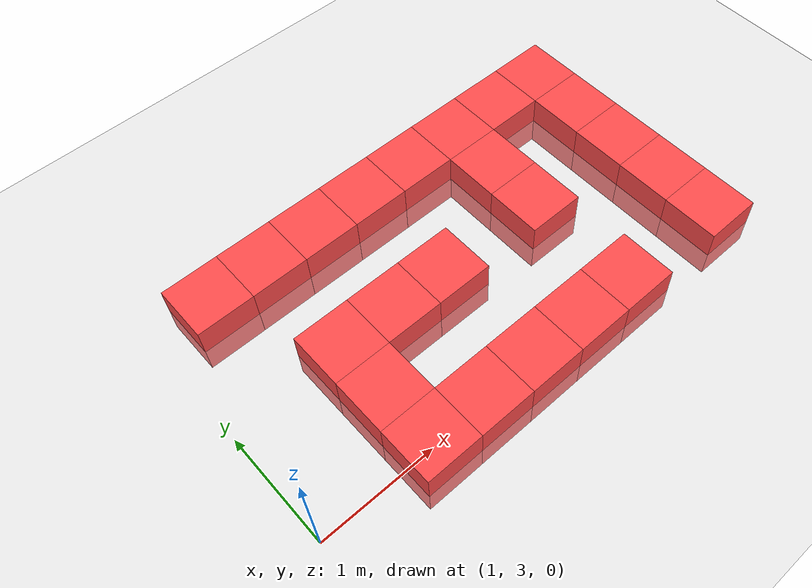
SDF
<sdf version="1.6">
 <world name="default">
  <model name="ground_plane">
   <static>1</static>
   <link name="link">
    <collision name="collision">
     <geometry><plane><normal>0 0 1</normal><size>100 100</size></plane></geometry>
     <surface><friction><ode><mu>100</mu><mu2>50</mu2></ode></friction></surface>
    </collision>
    <visual name="visual">
     <cast_shadows>0</cast_shadows>
     <geometry><plane><normal>0 0 1</normal><size>100 100</size></plane></geometry>
     <material>
      <script><uri>file://media/materials/scripts/gazebo.material</uri><name>Gazebo/Grey</name></script>
     </material>
    </visual>
   </link>
  </model>
  <model name="Box_Red_43">
   <link name="link_0">
    <inertial>
     <mass>1</mass>
     <inertia>
      <ixx>0.166667</ixx>
      <ixy>0</ixy>
      <ixz>0</ixz>
      <iyy>0.166667</iyy>
      <iyz>0</iyz>
      <izz>0.166667</izz>
     </inertia>
    </inertial>
    <visual name="visual">
     <geometry><box><size>0.5 0.5 0.5</size></box></geometry>
     <material>
      <lighting>1</lighting>
      <script><uri>file://media/materials/scripts/gazebo.material</uri><name>Gazebo/Grey</name></script>
      <ambient>1 0.3 0.3 1</ambient>
      <diffuse>0.7 0.7 0.7 1</diffuse>
      <specular>0.01 0.01 0.01 1</specular>
      <emissive>0 0 0 1</emissive>
      <shader type="vertex"><normal_map>__default__</normal_map></shader>
     </material>
    </visual>
    <collision name="collision">
     <geometry><box><size>0.5 0.5 0.5</size></box></geometry>
     <surface>
      <friction>
       <ode><mu>1</mu><mu2>1</mu2><fdir1>0 0 0</fdir1><slip1>0</slip1><slip2>0</slip2></ode>
       <torsional>
        <coefficient>1</coefficient>
        <patch_radius>0</patch_radius>
        <surface_radius>0</surface_radius>
        <use_patch_radius>1</use_patch_radius>
        <ode><slip>0</slip></ode>
       </torsional>
      </friction>
      <bounce><restitution_coefficient>0</restitution_coefficient><threshold>1e+06</threshold></bounce>
      <contact>
       <collide_without_contact>0</collide_without_contact>
       <collide_without_contact_bitmask>1</collide_without_contact_bitmask>
       <collide_bitmask>1</collide_bitmask>
       <ode>
        <soft_cfm>0</soft_cfm>
        <soft_erp>0.2</soft_erp>
        <kp>1e+13</kp>
        <kd>1</kd>
        <max_vel>0.01</max_vel>
        <min_depth>0</min_depth>
       </ode>
       <bullet>
        <split_impulse>1</split_impulse>
        <split_impulse_penetration_threshold>-0.01</split_impulse_penetration_threshold>
        <soft_cfm>0</soft_cfm>
        <soft_erp>0.2</soft_erp>
        <kp>1e+13</kp>
        <kd>1</kd>
       </bullet>
      </contact>
     </surface>
    </collision>
   </link>
   <static>0</static>
   <pose>1.500 5.000 0.000 0 0 0</pose>
  </model>
  <model name="Box_Red_50">
   <link name="link_0">
    <inertial>
     <mass>1</mass>
     <inertia>
      <ixx>0.166667</ixx>
      <ixy>0</ixy>
      <ixz>0</ixz>
      <iyy>0.166667</iyy>
      <iyz>0</iyz>
      <izz>0.166667</izz>
     </inertia>
    </inertial>
    <visual name="visual">
     <geometry><box><size>0.5 0.5 0.5</size></box></geometry>
     <material>
      <lighting>1</lighting>
      <script><uri>file://media/materials/scripts/gazebo.material</uri><name>Gazebo/Grey</name></script>
      <ambient>1 0.3 0.3 1</ambient>
      <diffuse>0.7 0.7 0.7 1</diffuse>
      <specular>0.01 0.01 0.01 1</specular>
      <emissive>0 0 0 1</emissive>
      <shader type="vertex"><normal_map>__default__</normal_map></shader>
     </material>
    </visual>
    <collision name="collision">
     <geometry><box><size>0.5 0.5 0.5</size></box></geometry>
     <surface>
      <friction>
       <ode><mu>1</mu><mu2>1</mu2><fdir1>0 0 0</fdir1><slip1>0</slip1><slip2>0</slip2></ode>
       <torsional>
        <coefficient>1</coefficient>
        <patch_radius>0</patch_radius>
        <surface_radius>0</surface_radius>
        <use_patch_radius>1</use_patch_radius>
        <ode><slip>0</slip></ode>
       </torsional>
      </friction>
      <bounce><restitution_coefficient>0</restitution_coefficient><threshold>1e+06</threshold></bounce>
      <contact>
       <collide_without_contact>0</collide_without_contact>
       <collide_without_contact_bitmask>1</collide_without_contact_bitmask>
       <collide_bitmask>1</collide_bitmask>
       <ode>
        <soft_cfm>0</soft_cfm>
        <soft_erp>0.2</soft_erp>
        <kp>1e+13</kp>
        <kd>1</kd>
        <max_vel>0.01</max_vel>
        <min_depth>0</min_depth>
       </ode>
       <bullet>
        <split_impulse>1</split_impulse>
        <split_impulse_penetration_threshold>-0.01</split_impulse_penetration_threshold>
        <soft_cfm>0</soft_cfm>
        <soft_erp>0.2</soft_erp>
        <kp>1e+13</kp>
        <kd>1</kd>
       </bullet>
      </contact>
     </surface>
    </collision>
   </link>
   <static>0</static>
   <pose>2.000 3.000 0.000 0 0 0</pose>
  </model>
  <model name="Box_Red_51">
   <link name="link_0">
    <inertial>
     <mass>1</mass>
     <inertia>
      <ixx>0.166667</ixx>
      <ixy>0</ixy>
      <ixz>0</ixz>
      <iyy>0.166667</iyy>
      <iyz>0</iyz>
      <izz>0.166667</izz>
     </inertia>
    </inertial>
    <visual name="visual">
     <geometry><box><size>0.5 0.5 0.5</size></box></geometry>
     <material>
      <lighting>1</lighting>
      <script><uri>file://media/materials/scripts/gazebo.material</uri><name>Gazebo/Grey</name></script>
      <ambient>1 0.3 0.3 1</ambient>
      <diffuse>0.7 0.7 0.7 1</diffuse>
      <specular>0.01 0.01 0.01 1</specular>
      <emissive>0 0 0 1</emissive>
      <shader type="vertex"><normal_map>__default__</normal_map></shader>
     </material>
    </visual>
    <collision name="collision">
     <geometry><box><size>0.5 0.5 0.5</size></box></geometry>
     <surface>
      <friction>
       <ode><mu>1</mu><mu2>1</mu2><fdir1>0 0 0</fdir1><slip1>0</slip1><slip2>0</slip2></ode>
       <torsional>
        <coefficient>1</coefficient>
        <patch_radius>0</patch_radius>
        <surface_radius>0</surface_radius>
        <use_patch_radius>1</use_patch_radius>
        <ode><slip>0</slip></ode>
       </torsional>
      </friction>
      <bounce><restitution_coefficient>0</restitution_coefficient><threshold>1e+06</threshold></bounce>
      <contact>
       <collide_without_contact>0</collide_without_contact>
       <collide_without_contact_bitmask>1</collide_without_contact_bitmask>
       <collide_bitmask>1</collide_bitmask>
       <ode>
        <soft_cfm>0</soft_cfm>
        <soft_erp>0.2</soft_erp>
        <kp>1e+13</kp>
        <kd>1</kd>
        <max_vel>0.01</max_vel>
        <min_depth>0</min_depth>
       </ode>
       <bullet>
        <split_impulse>1</split_impulse>
        <split_impulse_penetration_threshold>-0.01</split_impulse_penetration_threshold>
        <soft_cfm>0</soft_cfm>
        <soft_erp>0.2</soft_erp>
        <kp>1e+13</kp>
        <kd>1</kd>
       </bullet>
      </contact>
     </surface>
    </collision>
   </link>
   <static>0</static>
   <pose>2.000 3.500 0.000 0 0 0</pose>
  </model>
  <model name="Box_Red_52">
   <link name="link_0">
    <inertial>
     <mass>1</mass>
     <inertia>
      <ixx>0.166667</ixx>
      <ixy>0</ixy>
      <ixz>0</ixz>
      <iyy>0.166667</iyy>
      <iyz>0</iyz>
      <izz>0.166667</izz>
     </inertia>
    </inertial>
    <visual name="visual">
     <geometry><box><size>0.5 0.5 0.5</size></box></geometry>
     <material>
      <lighting>1</lighting>
      <script><uri>file://media/materials/scripts/gazebo.material</uri><name>Gazebo/Grey</name></script>
      <ambient>1 0.3 0.3 1</ambient>
      <diffuse>0.7 0.7 0.7 1</diffuse>
      <specular>0.01 0.01 0.01 1</specular>
      <emissive>0 0 0 1</emissive>
      <shader type="vertex"><normal_map>__default__</normal_map></shader>
     </material>
    </visual>
    <collision name="collision">
     <geometry><box><size>0.5 0.5 0.5</size></box></geometry>
     <surface>
      <friction>
       <ode><mu>1</mu><mu2>1</mu2><fdir1>0 0 0</fdir1><slip1>0</slip1><slip2>0</slip2></ode>
       <torsional>
        <coefficient>1</coefficient>
        <patch_radius>0</patch_radius>
        <surface_radius>0</surface_radius>
        <use_patch_radius>1</use_patch_radius>
        <ode><slip>0</slip></ode>
       </torsional>
      </friction>
      <bounce><restitution_coefficient>0</restitution_coefficient><threshold>1e+06</threshold></bounce>
      <contact>
       <collide_without_contact>0</collide_without_contact>
       <collide_without_contact_bitmask>1</collide_without_contact_bitmask>
       <collide_bitmask>1</collide_bitmask>
       <ode>
        <soft_cfm>0</soft_cfm>
        <soft_erp>0.2</soft_erp>
        <kp>1e+13</kp>
        <kd>1</kd>
        <max_vel>0.01</max_vel>
        <min_depth>0</min_depth>
       </ode>
       <bullet>
        <split_impulse>1</split_impulse>
        <split_impulse_penetration_threshold>-0.01</split_impulse_penetration_threshold>
        <soft_cfm>0</soft_cfm>
        <soft_erp>0.2</soft_erp>
        <kp>1e+13</kp>
        <kd>1</kd>
       </bullet>
      </contact>
     </surface>
    </collision>
   </link>
   <static>0</static>
   <pose>2.000 4.000 0.000 0 0 0</pose>
  </model>
  <model name="Box_Red_54">
   <link name="link_0">
    <inertial>
     <mass>1</mass>
     <inertia>
      <ixx>0.166667</ixx>
      <ixy>0</ixy>
      <ixz>0</ixz>
      <iyy>0.166667</iyy>
      <iyz>0</iyz>
      <izz>0.166667</izz>
     </inertia>
    </inertial>
    <visual name="visual">
     <geometry><box><size>0.5 0.5 0.5</size></box></geometry>
     <material>
      <lighting>1</lighting>
      <script><uri>file://media/materials/scripts/gazebo.material</uri><name>Gazebo/Grey</name></script>
      <ambient>1 0.3 0.3 1</ambient>
      <diffuse>0.7 0.7 0.7 1</diffuse>
      <specular>0.01 0.01 0.01 1</specular>
      <emissive>0 0 0 1</emissive>
      <shader type="vertex"><normal_map>__default__</normal_map></shader>
     </material>
    </visual>
    <collision name="collision">
     <geometry><box><size>0.5 0.5 0.5</size></box></geometry>
     <surface>
      <friction>
       <ode><mu>1</mu><mu2>1</mu2><fdir1>0 0 0</fdir1><slip1>0</slip1><slip2>0</slip2></ode>
       <torsional>
        <coefficient>1</coefficient>
        <patch_radius>0</patch_radius>
        <surface_radius>0</surface_radius>
        <use_patch_radius>1</use_patch_radius>
        <ode><slip>0</slip></ode>
       </torsional>
      </friction>
      <bounce><restitution_coefficient>0</restitution_coefficient><threshold>1e+06</threshold></bounce>
      <contact>
       <collide_without_contact>0</collide_without_contact>
       <collide_without_contact_bitmask>1</collide_without_contact_bitmask>
       <collide_bitmask>1</collide_bitmask>
       <ode>
        <soft_cfm>0</soft_cfm>
        <soft_erp>0.2</soft_erp>
        <kp>1e+13</kp>
        <kd>1</kd>
        <max_vel>0.01</max_vel>
        <min_depth>0</min_depth>
       </ode>
       <bullet>
        <split_impulse>1</split_impulse>
        <split_impulse_penetration_threshold>-0.01</split_impulse_penetration_threshold>
        <soft_cfm>0</soft_cfm>
        <soft_erp>0.2</soft_erp>
        <kp>1e+13</kp>
        <kd>1</kd>
       </bullet>
      </contact>
     </surface>
    </collision>
   </link>
   <static>0</static>
   <pose>2.000 5.000 0.000 0 0 0</pose>
  </model>
  <model name="Box_Red_61">
   <link name="link_0">
    <inertial>
     <mass>1</mass>
     <inertia>
      <ixx>0.166667</ixx>
      <ixy>0</ixy>
      <ixz>0</ixz>
      <iyy>0.166667</iyy>
      <iyz>0</iyz>
      <izz>0.166667</izz>
     </inertia>
    </inertial>
    <visual name="visual">
     <geometry><box><size>0.5 0.5 0.5</size></box></geometry>
     <material>
      <lighting>1</lighting>
      <script><uri>file://media/materials/scripts/gazebo.material</uri><name>Gazebo/Grey</name></script>
      <ambient>1 0.3 0.3 1</ambient>
      <diffuse>0.7 0.7 0.7 1</diffuse>
      <specular>0.01 0.01 0.01 1</specular>
      <emissive>0 0 0 1</emissive>
      <shader type="vertex"><normal_map>__default__</normal_map></shader>
     </material>
    </visual>
    <collision name="collision">
     <geometry><box><size>0.5 0.5 0.5</size></box></geometry>
     <surface>
      <friction>
       <ode><mu>1</mu><mu2>1</mu2><fdir1>0 0 0</fdir1><slip1>0</slip1><slip2>0</slip2></ode>
       <torsional>
        <coefficient>1</coefficient>
        <patch_radius>0</patch_radius>
        <surface_radius>0</surface_radius>
        <use_patch_radius>1</use_patch_radius>
        <ode><slip>0</slip></ode>
       </torsional>
      </friction>
      <bounce><restitution_coefficient>0</restitution_coefficient><threshold>1e+06</threshold></bounce>
      <contact>
       <collide_without_contact>0</collide_without_contact>
       <collide_without_contact_bitmask>1</collide_without_contact_bitmask>
       <collide_bitmask>1</collide_bitmask>
       <ode>
        <soft_cfm>0</soft_cfm>
        <soft_erp>0.2</soft_erp>
        <kp>1e+13</kp>
        <kd>1</kd>
        <max_vel>0.01</max_vel>
        <min_depth>0</min_depth>
       </ode>
       <bullet>
        <split_impulse>1</split_impulse>
        <split_impulse_penetration_threshold>-0.01</split_impulse_penetration_threshold>
        <soft_cfm>0</soft_cfm>
        <soft_erp>0.2</soft_erp>
        <kp>1e+13</kp>
        <kd>1</kd>
       </bullet>
      </contact>
     </surface>
    </collision>
   </link>
   <static>0</static>
   <pose>2.500 3.000 0.000 0 0 0</pose>
  </model>
  <model name="Box_Red_63">
   <link name="link_0">
    <inertial>
     <mass>1</mass>
     <inertia>
      <ixx>0.166667</ixx>
      <ixy>0</ixy>
      <ixz>0</ixz>
      <iyy>0.166667</iyy>
      <iyz>0</iyz>
      <izz>0.166667</izz>
     </inertia>
    </inertial>
    <visual name="visual">
     <geometry><box><size>0.5 0.5 0.5</size></box></geometry>
     <material>
      <lighting>1</lighting>
      <script><uri>file://media/materials/scripts/gazebo.material</uri><name>Gazebo/Grey</name></script>
      <ambient>1 0.3 0.3 1</ambient>
      <diffuse>0.7 0.7 0.7 1</diffuse>
      <specular>0.01 0.01 0.01 1</specular>
      <emissive>0 0 0 1</emissive>
      <shader type="vertex"><normal_map>__default__</normal_map></shader>
     </material>
    </visual>
    <collision name="collision">
     <geometry><box><size>0.5 0.5 0.5</size></box></geometry>
     <surface>
      <friction>
       <ode><mu>1</mu><mu2>1</mu2><fdir1>0 0 0</fdir1><slip1>0</slip1><slip2>0</slip2></ode>
       <torsional>
        <coefficient>1</coefficient>
        <patch_radius>0</patch_radius>
        <surface_radius>0</surface_radius>
        <use_patch_radius>1</use_patch_radius>
        <ode><slip>0</slip></ode>
       </torsional>
      </friction>
      <bounce><restitution_coefficient>0</restitution_coefficient><threshold>1e+06</threshold></bounce>
      <contact>
       <collide_without_contact>0</collide_without_contact>
       <collide_without_contact_bitmask>1</collide_without_contact_bitmask>
       <collide_bitmask>1</collide_bitmask>
       <ode>
        <soft_cfm>0</soft_cfm>
        <soft_erp>0.2</soft_erp>
        <kp>1e+13</kp>
        <kd>1</kd>
        <max_vel>0.01</max_vel>
        <min_depth>0</min_depth>
       </ode>
       <bullet>
        <split_impulse>1</split_impulse>
        <split_impulse_penetration_threshold>-0.01</split_impulse_penetration_threshold>
        <soft_cfm>0</soft_cfm>
        <soft_erp>0.2</soft_erp>
        <kp>1e+13</kp>
        <kd>1</kd>
       </bullet>
      </contact>
     </surface>
    </collision>
   </link>
   <static>0</static>
   <pose>2.500 4.000 0.000 0 0 0</pose>
  </model>
  <model name="Box_Red_65">
   <link name="link_0">
    <inertial>
     <mass>1</mass>
     <inertia>
      <ixx>0.166667</ixx>
      <ixy>0</ixy>
      <ixz>0</ixz>
      <iyy>0.166667</iyy>
      <iyz>0</iyz>
      <izz>0.166667</izz>
     </inertia>
    </inertial>
    <visual name="visual">
     <geometry><box><size>0.5 0.5 0.5</size></box></geometry>
     <material>
      <lighting>1</lighting>
      <script><uri>file://media/materials/scripts/gazebo.material</uri><name>Gazebo/Grey</name></script>
      <ambient>1 0.3 0.3 1</ambient>
      <diffuse>0.7 0.7 0.7 1</diffuse>
      <specular>0.01 0.01 0.01 1</specular>
      <emissive>0 0 0 1</emissive>
      <shader type="vertex"><normal_map>__default__</normal_map></shader>
     </material>
    </visual>
    <collision name="collision">
     <geometry><box><size>0.5 0.5 0.5</size></box></geometry>
     <surface>
      <friction>
       <ode><mu>1</mu><mu2>1</mu2><fdir1>0 0 0</fdir1><slip1>0</slip1><slip2>0</slip2></ode>
       <torsional>
        <coefficient>1</coefficient>
        <patch_radius>0</patch_radius>
        <surface_radius>0</surface_radius>
        <use_patch_radius>1</use_patch_radius>
        <ode><slip>0</slip></ode>
       </torsional>
      </friction>
      <bounce><restitution_coefficient>0</restitution_coefficient><threshold>1e+06</threshold></bounce>
      <contact>
       <collide_without_contact>0</collide_without_contact>
       <collide_without_contact_bitmask>1</collide_without_contact_bitmask>
       <collide_bitmask>1</collide_bitmask>
       <ode>
        <soft_cfm>0</soft_cfm>
        <soft_erp>0.2</soft_erp>
        <kp>1e+13</kp>
        <kd>1</kd>
        <max_vel>0.01</max_vel>
        <min_depth>0</min_depth>
       </ode>
       <bullet>
        <split_impulse>1</split_impulse>
        <split_impulse_penetration_threshold>-0.01</split_impulse_penetration_threshold>
        <soft_cfm>0</soft_cfm>
        <soft_erp>0.2</soft_erp>
        <kp>1e+13</kp>
        <kd>1</kd>
       </bullet>
      </contact>
     </surface>
    </collision>
   </link>
   <static>0</static>
   <pose>2.500 5.000 0.000 0 0 0</pose>
  </model>
  <model name="Box_Red_72">
   <link name="link_0">
    <inertial>
     <mass>1</mass>
     <inertia>
      <ixx>0.166667</ixx>
      <ixy>0</ixy>
      <ixz>0</ixz>
      <iyy>0.166667</iyy>
      <iyz>0</iyz>
      <izz>0.166667</izz>
     </inertia>
    </inertial>
    <visual name="visual">
     <geometry><box><size>0.5 0.5 0.5</size></box></geometry>
     <material>
      <lighting>1</lighting>
      <script><uri>file://media/materials/scripts/gazebo.material</uri><name>Gazebo/Grey</name></script>
      <ambient>1 0.3 0.3 1</ambient>
      <diffuse>0.7 0.7 0.7 1</diffuse>
      <specular>0.01 0.01 0.01 1</specular>
      <emissive>0 0 0 1</emissive>
      <shader type="vertex"><normal_map>__default__</normal_map></shader>
     </material>
    </visual>
    <collision name="collision">
     <geometry><box><size>0.5 0.5 0.5</size></box></geometry>
     <surface>
      <friction>
       <ode><mu>1</mu><mu2>1</mu2><fdir1>0 0 0</fdir1><slip1>0</slip1><slip2>0</slip2></ode>
       <torsional>
        <coefficient>1</coefficient>
        <patch_radius>0</patch_radius>
        <surface_radius>0</surface_radius>
        <use_patch_radius>1</use_patch_radius>
        <ode><slip>0</slip></ode>
       </torsional>
      </friction>
      <bounce><restitution_coefficient>0</restitution_coefficient><threshold>1e+06</threshold></bounce>
      <contact>
       <collide_without_contact>0</collide_without_contact>
       <collide_without_contact_bitmask>1</collide_without_contact_bitmask>
       <collide_bitmask>1</collide_bitmask>
       <ode>
        <soft_cfm>0</soft_cfm>
        <soft_erp>0.2</soft_erp>
        <kp>1e+13</kp>
        <kd>1</kd>
        <max_vel>0.01</max_vel>
        <min_depth>0</min_depth>
       </ode>
       <bullet>
        <split_impulse>1</split_impulse>
        <split_impulse_penetration_threshold>-0.01</split_impulse_penetration_threshold>
        <soft_cfm>0</soft_cfm>
        <soft_erp>0.2</soft_erp>
        <kp>1e+13</kp>
        <kd>1</kd>
       </bullet>
      </contact>
     </surface>
    </collision>
   </link>
   <static>0</static>
   <pose>3.000 3.000 0.000 0 0 0</pose>
  </model>
  <model name="Box_Red_74">
   <link name="link_0">
    <inertial>
     <mass>1</mass>
     <inertia>
      <ixx>0.166667</ixx>
      <ixy>0</ixy>
      <ixz>0</ixz>
      <iyy>0.166667</iyy>
      <iyz>0</iyz>
      <izz>0.166667</izz>
     </inertia>
    </inertial>
    <visual name="visual">
     <geometry><box><size>0.5 0.5 0.5</size></box></geometry>
     <material>
      <lighting>1</lighting>
      <script><uri>file://media/materials/scripts/gazebo.material</uri><name>Gazebo/Grey</name></script>
      <ambient>1 0.3 0.3 1</ambient>
      <diffuse>0.7 0.7 0.7 1</diffuse>
      <specular>0.01 0.01 0.01 1</specular>
      <emissive>0 0 0 1</emissive>
      <shader type="vertex"><normal_map>__default__</normal_map></shader>
     </material>
    </visual>
    <collision name="collision">
     <geometry><box><size>0.5 0.5 0.5</size></box></geometry>
     <surface>
      <friction>
       <ode><mu>1</mu><mu2>1</mu2><fdir1>0 0 0</fdir1><slip1>0</slip1><slip2>0</slip2></ode>
       <torsional>
        <coefficient>1</coefficient>
        <patch_radius>0</patch_radius>
        <surface_radius>0</surface_radius>
        <use_patch_radius>1</use_patch_radius>
        <ode><slip>0</slip></ode>
       </torsional>
      </friction>
      <bounce><restitution_coefficient>0</restitution_coefficient><threshold>1e+06</threshold></bounce>
      <contact>
       <collide_without_contact>0</collide_without_contact>
       <collide_without_contact_bitmask>1</collide_without_contact_bitmask>
       <collide_bitmask>1</collide_bitmask>
       <ode>
        <soft_cfm>0</soft_cfm>
        <soft_erp>0.2</soft_erp>
        <kp>1e+13</kp>
        <kd>1</kd>
        <max_vel>0.01</max_vel>
        <min_depth>0</min_depth>
       </ode>
       <bullet>
        <split_impulse>1</split_impulse>
        <split_impulse_penetration_threshold>-0.01</split_impulse_penetration_threshold>
        <soft_cfm>0</soft_cfm>
        <soft_erp>0.2</soft_erp>
        <kp>1e+13</kp>
        <kd>1</kd>
       </bullet>
      </contact>
     </surface>
    </collision>
   </link>
   <static>0</static>
   <pose>3.000 4.000 0.000 0 0 0</pose>
  </model>
  <model name="Box_Red_76">
   <link name="link_0">
    <inertial>
     <mass>1</mass>
     <inertia>
      <ixx>0.166667</ixx>
      <ixy>0</ixy>
      <ixz>0</ixz>
      <iyy>0.166667</iyy>
      <iyz>0</iyz>
      <izz>0.166667</izz>
     </inertia>
    </inertial>
    <visual name="visual">
     <geometry><box><size>0.5 0.5 0.5</size></box></geometry>
     <material>
      <lighting>1</lighting>
      <script><uri>file://media/materials/scripts/gazebo.material</uri><name>Gazebo/Grey</name></script>
      <ambient>1 0.3 0.3 1</ambient>
      <diffuse>0.7 0.7 0.7 1</diffuse>
      <specular>0.01 0.01 0.01 1</specular>
      <emissive>0 0 0 1</emissive>
      <shader type="vertex"><normal_map>__default__</normal_map></shader>
     </material>
    </visual>
    <collision name="collision">
     <geometry><box><size>0.5 0.5 0.5</size></box></geometry>
     <surface>
      <friction>
       <ode><mu>1</mu><mu2>1</mu2><fdir1>0 0 0</fdir1><slip1>0</slip1><slip2>0</slip2></ode>
       <torsional>
        <coefficient>1</coefficient>
        <patch_radius>0</patch_radius>
        <surface_radius>0</surface_radius>
        <use_patch_radius>1</use_patch_radius>
        <ode><slip>0</slip></ode>
       </torsional>
      </friction>
      <bounce><restitution_coefficient>0</restitution_coefficient><threshold>1e+06</threshold></bounce>
      <contact>
       <collide_without_contact>0</collide_without_contact>
       <collide_without_contact_bitmask>1</collide_without_contact_bitmask>
       <collide_bitmask>1</collide_bitmask>
       <ode>
        <soft_cfm>0</soft_cfm>
        <soft_erp>0.2</soft_erp>
        <kp>1e+13</kp>
        <kd>1</kd>
        <max_vel>0.01</max_vel>
        <min_depth>0</min_depth>
       </ode>
       <bullet>
        <split_impulse>1</split_impulse>
        <split_impulse_penetration_threshold>-0.01</split_impulse_penetration_threshold>
        <soft_cfm>0</soft_cfm>
        <soft_erp>0.2</soft_erp>
        <kp>1e+13</kp>
        <kd>1</kd>
       </bullet>
      </contact>
     </surface>
    </collision>
   </link>
   <static>0</static>
   <pose>3.000 5.000 0.000 0 0 0</pose>
  </model>
  <model name="Box_Red_83">
   <link name="link_0">
    <inertial>
     <mass>1</mass>
     <inertia>
      <ixx>0.166667</ixx>
      <ixy>0</ixy>
      <ixz>0</ixz>
      <iyy>0.166667</iyy>
      <iyz>0</iyz>
      <izz>0.166667</izz>
     </inertia>
    </inertial>
    <visual name="visual">
     <geometry><box><size>0.5 0.5 0.5</size></box></geometry>
     <material>
      <lighting>1</lighting>
      <script><uri>file://media/materials/scripts/gazebo.material</uri><name>Gazebo/Grey</name></script>
      <ambient>1 0.3 0.3 1</ambient>
      <diffuse>0.7 0.7 0.7 1</diffuse>
      <specular>0.01 0.01 0.01 1</specular>
      <emissive>0 0 0 1</emissive>
      <shader type="vertex"><normal_map>__default__</normal_map></shader>
     </material>
    </visual>
    <collision name="collision">
     <geometry><box><size>0.5 0.5 0.5</size></box></geometry>
     <surface>
      <friction>
       <ode><mu>1</mu><mu2>1</mu2><fdir1>0 0 0</fdir1><slip1>0</slip1><slip2>0</slip2></ode>
       <torsional>
        <coefficient>1</coefficient>
        <patch_radius>0</patch_radius>
        <surface_radius>0</surface_radius>
        <use_patch_radius>1</use_patch_radius>
        <ode><slip>0</slip></ode>
       </torsional>
      </friction>
      <bounce><restitution_coefficient>0</restitution_coefficient><threshold>1e+06</threshold></bounce>
      <contact>
       <collide_without_contact>0</collide_without_contact>
       <collide_without_contact_bitmask>1</collide_without_contact_bitmask>
       <collide_bitmask>1</collide_bitmask>
       <ode>
        <soft_cfm>0</soft_cfm>
        <soft_erp>0.2</soft_erp>
        <kp>1e+13</kp>
        <kd>1</kd>
        <max_vel>0.01</max_vel>
        <min_depth>0</min_depth>
       </ode>
       <bullet>
        <split_impulse>1</split_impulse>
        <split_impulse_penetration_threshold>-0.01</split_impulse_penetration_threshold>
        <soft_cfm>0</soft_cfm>
        <soft_erp>0.2</soft_erp>
        <kp>1e+13</kp>
        <kd>1</kd>
       </bullet>
      </contact>
     </surface>
    </collision>
   </link>
   <static>0</static>
   <pose>3.500 3.000 0.000 0 0 0</pose>
  </model>
  <model name="Box_Red_87">
   <link name="link_0">
    <inertial>
     <mass>1</mass>
     <inertia>
      <ixx>0.166667</ixx>
      <ixy>0</ixy>
      <ixz>0</ixz>
      <iyy>0.166667</iyy>
      <iyz>0</iyz>
      <izz>0.166667</izz>
     </inertia>
    </inertial>
    <visual name="visual">
     <geometry><box><size>0.5 0.5 0.5</size></box></geometry>
     <material>
      <lighting>1</lighting>
      <script><uri>file://media/materials/scripts/gazebo.material</uri><name>Gazebo/Grey</name></script>
      <ambient>1 0.3 0.3 1</ambient>
      <diffuse>0.7 0.7 0.7 1</diffuse>
      <specular>0.01 0.01 0.01 1</specular>
      <emissive>0 0 0 1</emissive>
      <shader type="vertex"><normal_map>__default__</normal_map></shader>
     </material>
    </visual>
    <collision name="collision">
     <geometry><box><size>0.5 0.5 0.5</size></box></geometry>
     <surface>
      <friction>
       <ode><mu>1</mu><mu2>1</mu2><fdir1>0 0 0</fdir1><slip1>0</slip1><slip2>0</slip2></ode>
       <torsional>
        <coefficient>1</coefficient>
        <patch_radius>0</patch_radius>
        <surface_radius>0</surface_radius>
        <use_patch_radius>1</use_patch_radius>
        <ode><slip>0</slip></ode>
       </torsional>
      </friction>
      <bounce><restitution_coefficient>0</restitution_coefficient><threshold>1e+06</threshold></bounce>
      <contact>
       <collide_without_contact>0</collide_without_contact>
       <collide_without_contact_bitmask>1</collide_without_contact_bitmask>
       <collide_bitmask>1</collide_bitmask>
       <ode>
        <soft_cfm>0</soft_cfm>
        <soft_erp>0.2</soft_erp>
        <kp>1e+13</kp>
        <kd>1</kd>
        <max_vel>0.01</max_vel>
        <min_depth>0</min_depth>
       </ode>
       <bullet>
        <split_impulse>1</split_impulse>
        <split_impulse_penetration_threshold>-0.01</split_impulse_penetration_threshold>
        <soft_cfm>0</soft_cfm>
        <soft_erp>0.2</soft_erp>
        <kp>1e+13</kp>
        <kd>1</kd>
       </bullet>
      </contact>
     </surface>
    </collision>
   </link>
   <static>0</static>
   <pose>3.500 5.000 0.000 0 0 0</pose>
  </model>
  <model name="Box_Red_94">
   <link name="link_0">
    <inertial>
     <mass>1</mass>
     <inertia>
      <ixx>0.166667</ixx>
      <ixy>0</ixy>
      <ixz>0</ixz>
      <iyy>0.166667</iyy>
      <iyz>0</iyz>
      <izz>0.166667</izz>
     </inertia>
    </inertial>
    <visual name="visual">
     <geometry><box><size>0.5 0.5 0.5</size></box></geometry>
     <material>
      <lighting>1</lighting>
      <script><uri>file://media/materials/scripts/gazebo.material</uri><name>Gazebo/Grey</name></script>
      <ambient>1 0.3 0.3 1</ambient>
      <diffuse>0.7 0.7 0.7 1</diffuse>
      <specular>0.01 0.01 0.01 1</specular>
      <emissive>0 0 0 1</emissive>
      <shader type="vertex"><normal_map>__default__</normal_map></shader>
     </material>
    </visual>
    <collision name="collision">
     <geometry><box><size>0.5 0.5 0.5</size></box></geometry>
     <surface>
      <friction>
       <ode><mu>1</mu><mu2>1</mu2><fdir1>0 0 0</fdir1><slip1>0</slip1><slip2>0</slip2></ode>
       <torsional>
        <coefficient>1</coefficient>
        <patch_radius>0</patch_radius>
        <surface_radius>0</surface_radius>
        <use_patch_radius>1</use_patch_radius>
        <ode><slip>0</slip></ode>
       </torsional>
      </friction>
      <bounce><restitution_coefficient>0</restitution_coefficient><threshold>1e+06</threshold></bounce>
      <contact>
       <collide_without_contact>0</collide_without_contact>
       <collide_without_contact_bitmask>1</collide_without_contact_bitmask>
       <collide_bitmask>1</collide_bitmask>
       <ode>
        <soft_cfm>0</soft_cfm>
        <soft_erp>0.2</soft_erp>
        <kp>1e+13</kp>
        <kd>1</kd>
        <max_vel>0.01</max_vel>
        <min_depth>0</min_depth>
       </ode>
       <bullet>
        <split_impulse>1</split_impulse>
        <split_impulse_penetration_threshold>-0.01</split_impulse_penetration_threshold>
        <soft_cfm>0</soft_cfm>
        <soft_erp>0.2</soft_erp>
        <kp>1e+13</kp>
        <kd>1</kd>
       </bullet>
      </contact>
     </surface>
    </collision>
   </link>
   <static>0</static>
   <pose>4.000 3.000 0.000 0 0 0</pose>
  </model>
  <model name="Box_Red_96">
   <link name="link_0">
    <inertial>
     <mass>1</mass>
     <inertia>
      <ixx>0.166667</ixx>
      <ixy>0</ixy>
      <ixz>0</ixz>
      <iyy>0.166667</iyy>
      <iyz>0</iyz>
      <izz>0.166667</izz>
     </inertia>
    </inertial>
    <visual name="visual">
     <geometry><box><size>0.5 0.5 0.5</size></box></geometry>
     <material>
      <lighting>1</lighting>
      <script><uri>file://media/materials/scripts/gazebo.material</uri><name>Gazebo/Grey</name></script>
      <ambient>1 0.3 0.3 1</ambient>
      <diffuse>0.7 0.7 0.7 1</diffuse>
      <specular>0.01 0.01 0.01 1</specular>
      <emissive>0 0 0 1</emissive>
      <shader type="vertex"><normal_map>__default__</normal_map></shader>
     </material>
    </visual>
    <collision name="collision">
     <geometry><box><size>0.5 0.5 0.5</size></box></geometry>
     <surface>
      <friction>
       <ode><mu>1</mu><mu2>1</mu2><fdir1>0 0 0</fdir1><slip1>0</slip1><slip2>0</slip2></ode>
       <torsional>
        <coefficient>1</coefficient>
        <patch_radius>0</patch_radius>
        <surface_radius>0</surface_radius>
        <use_patch_radius>1</use_patch_radius>
        <ode><slip>0</slip></ode>
       </torsional>
      </friction>
      <bounce><restitution_coefficient>0</restitution_coefficient><threshold>1e+06</threshold></bounce>
      <contact>
       <collide_without_contact>0</collide_without_contact>
       <collide_without_contact_bitmask>1</collide_without_contact_bitmask>
       <collide_bitmask>1</collide_bitmask>
       <ode>
        <soft_cfm>0</soft_cfm>
        <soft_erp>0.2</soft_erp>
        <kp>1e+13</kp>
        <kd>1</kd>
        <max_vel>0.01</max_vel>
        <min_depth>0</min_depth>
       </ode>
       <bullet>
        <split_impulse>1</split_impulse>
        <split_impulse_penetration_threshold>-0.01</split_impulse_penetration_threshold>
        <soft_cfm>0</soft_cfm>
        <soft_erp>0.2</soft_erp>
        <kp>1e+13</kp>
        <kd>1</kd>
       </bullet>
      </contact>
     </surface>
    </collision>
   </link>
   <static>0</static>
   <pose>4.000 4.000 0.000 0 0 0</pose>
  </model>
  <model name="Box_Red_97">
   <link name="link_0">
    <inertial>
     <mass>1</mass>
     <inertia>
      <ixx>0.166667</ixx>
      <ixy>0</ixy>
      <ixz>0</ixz>
      <iyy>0.166667</iyy>
      <iyz>0</iyz>
      <izz>0.166667</izz>
     </inertia>
    </inertial>
    <visual name="visual">
     <geometry><box><size>0.5 0.5 0.5</size></box></geometry>
     <material>
      <lighting>1</lighting>
      <script><uri>file://media/materials/scripts/gazebo.material</uri><name>Gazebo/Grey</name></script>
      <ambient>1 0.3 0.3 1</ambient>
      <diffuse>0.7 0.7 0.7 1</diffuse>
      <specular>0.01 0.01 0.01 1</specular>
      <emissive>0 0 0 1</emissive>
      <shader type="vertex"><normal_map>__default__</normal_map></shader>
     </material>
    </visual>
    <collision name="collision">
     <geometry><box><size>0.5 0.5 0.5</size></box></geometry>
     <surface>
      <friction>
       <ode><mu>1</mu><mu2>1</mu2><fdir1>0 0 0</fdir1><slip1>0</slip1><slip2>0</slip2></ode>
       <torsional>
        <coefficient>1</coefficient>
        <patch_radius>0</patch_radius>
        <surface_radius>0</surface_radius>
        <use_patch_radius>1</use_patch_radius>
        <ode><slip>0</slip></ode>
       </torsional>
      </friction>
      <bounce><restitution_coefficient>0</restitution_coefficient><threshold>1e+06</threshold></bounce>
      <contact>
       <collide_without_contact>0</collide_without_contact>
       <collide_without_contact_bitmask>1</collide_without_contact_bitmask>
       <collide_bitmask>1</collide_bitmask>
       <ode>
        <soft_cfm>0</soft_cfm>
        <soft_erp>0.2</soft_erp>
        <kp>1e+13</kp>
        <kd>1</kd>
        <max_vel>0.01</max_vel>
        <min_depth>0</min_depth>
       </ode>
       <bullet>
        <split_impulse>1</split_impulse>
        <split_impulse_penetration_threshold>-0.01</split_impulse_penetration_threshold>
        <soft_cfm>0</soft_cfm>
        <soft_erp>0.2</soft_erp>
        <kp>1e+13</kp>
        <kd>1</kd>
       </bullet>
      </contact>
     </surface>
    </collision>
   </link>
   <static>0</static>
   <pose>4.000 4.500 0.000 0 0 0</pose>
  </model>
  <model name="Box_Red_98">
   <link name="link_0">
    <inertial>
     <mass>1</mass>
     <inertia>
      <ixx>0.166667</ixx>
      <ixy>0</ixy>
      <ixz>0</ixz>
      <iyy>0.166667</iyy>
      <iyz>0</iyz>
      <izz>0.166667</izz>
     </inertia>
    </inertial>
    <visual name="visual">
     <geometry><box><size>0.5 0.5 0.5</size></box></geometry>
     <material>
      <lighting>1</lighting>
      <script><uri>file://media/materials/scripts/gazebo.material</uri><name>Gazebo/Grey</name></script>
      <ambient>1 0.3 0.3 1</ambient>
      <diffuse>0.7 0.7 0.7 1</diffuse>
      <specular>0.01 0.01 0.01 1</specular>
      <emissive>0 0 0 1</emissive>
      <shader type="vertex"><normal_map>__default__</normal_map></shader>
     </material>
    </visual>
    <collision name="collision">
     <geometry><box><size>0.5 0.5 0.5</size></box></geometry>
     <surface>
      <friction>
       <ode><mu>1</mu><mu2>1</mu2><fdir1>0 0 0</fdir1><slip1>0</slip1><slip2>0</slip2></ode>
       <torsional>
        <coefficient>1</coefficient>
        <patch_radius>0</patch_radius>
        <surface_radius>0</surface_radius>
        <use_patch_radius>1</use_patch_radius>
        <ode><slip>0</slip></ode>
       </torsional>
      </friction>
      <bounce><restitution_coefficient>0</restitution_coefficient><threshold>1e+06</threshold></bounce>
      <contact>
       <collide_without_contact>0</collide_without_contact>
       <collide_without_contact_bitmask>1</collide_without_contact_bitmask>
       <collide_bitmask>1</collide_bitmask>
       <ode>
        <soft_cfm>0</soft_cfm>
        <soft_erp>0.2</soft_erp>
        <kp>1e+13</kp>
        <kd>1</kd>
        <max_vel>0.01</max_vel>
        <min_depth>0</min_depth>
       </ode>
       <bullet>
        <split_impulse>1</split_impulse>
        <split_impulse_penetration_threshold>-0.01</split_impulse_penetration_threshold>
        <soft_cfm>0</soft_cfm>
        <soft_erp>0.2</soft_erp>
        <kp>1e+13</kp>
        <kd>1</kd>
       </bullet>
      </contact>
     </surface>
    </collision>
   </link>
   <static>0</static>
   <pose>4.000 5.000 0.000 0 0 0</pose>
  </model>
  <model name="Box_Red_109">
   <link name="link_0">
    <inertial>
     <mass>1</mass>
     <inertia>
      <ixx>0.166667</ixx>
      <ixy>0</ixy>
      <ixz>0</ixz>
      <iyy>0.166667</iyy>
      <iyz>0</iyz>
      <izz>0.166667</izz>
     </inertia>
    </inertial>
    <visual name="visual">
     <geometry><box><size>0.5 0.5 0.5</size></box></geometry>
     <material>
      <lighting>1</lighting>
      <script><uri>file://media/materials/scripts/gazebo.material</uri><name>Gazebo/Grey</name></script>
      <ambient>1 0.3 0.3 1</ambient>
      <diffuse>0.7 0.7 0.7 1</diffuse>
      <specular>0.01 0.01 0.01 1</specular>
      <emissive>0 0 0 1</emissive>
      <shader type="vertex"><normal_map>__default__</normal_map></shader>
     </material>
    </visual>
    <collision name="collision">
     <geometry><box><size>0.5 0.5 0.5</size></box></geometry>
     <surface>
      <friction>
       <ode><mu>1</mu><mu2>1</mu2><fdir1>0 0 0</fdir1><slip1>0</slip1><slip2>0</slip2></ode>
       <torsional>
        <coefficient>1</coefficient>
        <patch_radius>0</patch_radius>
        <surface_radius>0</surface_radius>
        <use_patch_radius>1</use_patch_radius>
        <ode><slip>0</slip></ode>
       </torsional>
      </friction>
      <bounce><restitution_coefficient>0</restitution_coefficient><threshold>1e+06</threshold></bounce>
      <contact>
       <collide_without_contact>0</collide_without_contact>
       <collide_without_contact_bitmask>1</collide_without_contact_bitmask>
       <collide_bitmask>1</collide_bitmask>
       <ode>
        <soft_cfm>0</soft_cfm>
        <soft_erp>0.2</soft_erp>
        <kp>1e+13</kp>
        <kd>1</kd>
        <max_vel>0.01</max_vel>
        <min_depth>0</min_depth>
       </ode>
       <bullet>
        <split_impulse>1</split_impulse>
        <split_impulse_penetration_threshold>-0.01</split_impulse_penetration_threshold>
        <soft_cfm>0</soft_cfm>
        <soft_erp>0.2</soft_erp>
        <kp>1e+13</kp>
        <kd>1</kd>
       </bullet>
      </contact>
     </surface>
    </collision>
   </link>
   <static>0</static>
   <pose>4.500 5.000 0.000 0 0 0</pose>
  </model>
  <model name="Box_Red_116">
   <link name="link_0">
    <inertial>
     <mass>1</mass>
     <inertia>
      <ixx>0.166667</ixx>
      <ixy>0</ixy>
      <ixz>0</ixz>
      <iyy>0.166667</iyy>
      <iyz>0</iyz>
      <izz>0.166667</izz>
     </inertia>
    </inertial>
    <visual name="visual">
     <geometry><box><size>0.5 0.5 0.5</size></box></geometry>
     <material>
      <lighting>1</lighting>
      <script><uri>file://media/materials/scripts/gazebo.material</uri><name>Gazebo/Grey</name></script>
      <ambient>1 0.3 0.3 1</ambient>
      <diffuse>0.7 0.7 0.7 1</diffuse>
      <specular>0.01 0.01 0.01 1</specular>
      <emissive>0 0 0 1</emissive>
      <shader type="vertex"><normal_map>__default__</normal_map></shader>
     </material>
    </visual>
    <collision name="collision">
     <geometry><box><size>0.5 0.5 0.5</size></box></geometry>
     <surface>
      <friction>
       <ode><mu>1</mu><mu2>1</mu2><fdir1>0 0 0</fdir1><slip1>0</slip1><slip2>0</slip2></ode>
       <torsional>
        <coefficient>1</coefficient>
        <patch_radius>0</patch_radius>
        <surface_radius>0</surface_radius>
        <use_patch_radius>1</use_patch_radius>
        <ode><slip>0</slip></ode>
       </torsional>
      </friction>
      <bounce><restitution_coefficient>0</restitution_coefficient><threshold>1e+06</threshold></bounce>
      <contact>
       <collide_without_contact>0</collide_without_contact>
       <collide_without_contact_bitmask>1</collide_without_contact_bitmask>
       <collide_bitmask>1</collide_bitmask>
       <ode>
        <soft_cfm>0</soft_cfm>
        <soft_erp>0.2</soft_erp>
        <kp>1e+13</kp>
        <kd>1</kd>
        <max_vel>0.01</max_vel>
        <min_depth>0</min_depth>
       </ode>
       <bullet>
        <split_impulse>1</split_impulse>
        <split_impulse_penetration_threshold>-0.01</split_impulse_penetration_threshold>
        <soft_cfm>0</soft_cfm>
        <soft_erp>0.2</soft_erp>
        <kp>1e+13</kp>
        <kd>1</kd>
       </bullet>
      </contact>
     </surface>
    </collision>
   </link>
   <static>0</static>
   <pose>5.000 3.000 0.000 0 0 0</pose>
  </model>
  <model name="Box_Red_117">
   <link name="link_0">
    <inertial>
     <mass>1</mass>
     <inertia>
      <ixx>0.166667</ixx>
      <ixy>0</ixy>
      <ixz>0</ixz>
      <iyy>0.166667</iyy>
      <iyz>0</iyz>
      <izz>0.166667</izz>
     </inertia>
    </inertial>
    <visual name="visual">
     <geometry><box><size>0.5 0.5 0.5</size></box></geometry>
     <material>
      <lighting>1</lighting>
      <script><uri>file://media/materials/scripts/gazebo.material</uri><name>Gazebo/Grey</name></script>
      <ambient>1 0.3 0.3 1</ambient>
      <diffuse>0.7 0.7 0.7 1</diffuse>
      <specular>0.01 0.01 0.01 1</specular>
      <emissive>0 0 0 1</emissive>
      <shader type="vertex"><normal_map>__default__</normal_map></shader>
     </material>
    </visual>
    <collision name="collision">
     <geometry><box><size>0.5 0.5 0.5</size></box></geometry>
     <surface>
      <friction>
       <ode><mu>1</mu><mu2>1</mu2><fdir1>0 0 0</fdir1><slip1>0</slip1><slip2>0</slip2></ode>
       <torsional>
        <coefficient>1</coefficient>
        <patch_radius>0</patch_radius>
        <surface_radius>0</surface_radius>
        <use_patch_radius>1</use_patch_radius>
        <ode><slip>0</slip></ode>
       </torsional>
      </friction>
      <bounce><restitution_coefficient>0</restitution_coefficient><threshold>1e+06</threshold></bounce>
      <contact>
       <collide_without_contact>0</collide_without_contact>
       <collide_without_contact_bitmask>1</collide_without_contact_bitmask>
       <collide_bitmask>1</collide_bitmask>
       <ode>
        <soft_cfm>0</soft_cfm>
        <soft_erp>0.2</soft_erp>
        <kp>1e+13</kp>
        <kd>1</kd>
        <max_vel>0.01</max_vel>
        <min_depth>0</min_depth>
       </ode>
       <bullet>
        <split_impulse>1</split_impulse>
        <split_impulse_penetration_threshold>-0.01</split_impulse_penetration_threshold>
        <soft_cfm>0</soft_cfm>
        <soft_erp>0.2</soft_erp>
        <kp>1e+13</kp>
        <kd>1</kd>
       </bullet>
      </contact>
     </surface>
    </collision>
   </link>
   <static>0</static>
   <pose>5.000 3.500 0.000 0 0 0</pose>
  </model>
  <model name="Box_Red_118">
   <link name="link_0">
    <inertial>
     <mass>1</mass>
     <inertia>
      <ixx>0.166667</ixx>
      <ixy>0</ixy>
      <ixz>0</ixz>
      <iyy>0.166667</iyy>
      <iyz>0</iyz>
      <izz>0.166667</izz>
     </inertia>
    </inertial>
    <visual name="visual">
     <geometry><box><size>0.5 0.5 0.5</size></box></geometry>
     <material>
      <lighting>1</lighting>
      <script><uri>file://media/materials/scripts/gazebo.material</uri><name>Gazebo/Grey</name></script>
      <ambient>1 0.3 0.3 1</ambient>
      <diffuse>0.7 0.7 0.7 1</diffuse>
      <specular>0.01 0.01 0.01 1</specular>
      <emissive>0 0 0 1</emissive>
      <shader type="vertex"><normal_map>__default__</normal_map></shader>
     </material>
    </visual>
    <collision name="collision">
     <geometry><box><size>0.5 0.5 0.5</size></box></geometry>
     <surface>
      <friction>
       <ode><mu>1</mu><mu2>1</mu2><fdir1>0 0 0</fdir1><slip1>0</slip1><slip2>0</slip2></ode>
       <torsional>
        <coefficient>1</coefficient>
        <patch_radius>0</patch_radius>
        <surface_radius>0</surface_radius>
        <use_patch_radius>1</use_patch_radius>
        <ode><slip>0</slip></ode>
       </torsional>
      </friction>
      <bounce><restitution_coefficient>0</restitution_coefficient><threshold>1e+06</threshold></bounce>
      <contact>
       <collide_without_contact>0</collide_without_contact>
       <collide_without_contact_bitmask>1</collide_without_contact_bitmask>
       <collide_bitmask>1</collide_bitmask>
       <ode>
        <soft_cfm>0</soft_cfm>
        <soft_erp>0.2</soft_erp>
        <kp>1e+13</kp>
        <kd>1</kd>
        <max_vel>0.01</max_vel>
        <min_depth>0</min_depth>
       </ode>
       <bullet>
        <split_impulse>1</split_impulse>
        <split_impulse_penetration_threshold>-0.01</split_impulse_penetration_threshold>
        <soft_cfm>0</soft_cfm>
        <soft_erp>0.2</soft_erp>
        <kp>1e+13</kp>
        <kd>1</kd>
       </bullet>
      </contact>
     </surface>
    </collision>
   </link>
   <static>0</static>
   <pose>5.000 4.000 0.000 0 0 0</pose>
  </model>
  <model name="Box_Red_119">
   <link name="link_0">
    <inertial>
     <mass>1</mass>
     <inertia>
      <ixx>0.166667</ixx>
      <ixy>0</ixy>
      <ixz>0</ixz>
      <iyy>0.166667</iyy>
      <iyz>0</iyz>
      <izz>0.166667</izz>
     </inertia>
    </inertial>
    <visual name="visual">
     <geometry><box><size>0.5 0.5 0.5</size></box></geometry>
     <material>
      <lighting>1</lighting>
      <script><uri>file://media/materials/scripts/gazebo.material</uri><name>Gazebo/Grey</name></script>
      <ambient>1 0.3 0.3 1</ambient>
      <diffuse>0.7 0.7 0.7 1</diffuse>
      <specular>0.01 0.01 0.01 1</specular>
      <emissive>0 0 0 1</emissive>
      <shader type="vertex"><normal_map>__default__</normal_map></shader>
     </material>
    </visual>
    <collision name="collision">
     <geometry><box><size>0.5 0.5 0.5</size></box></geometry>
     <surface>
      <friction>
       <ode><mu>1</mu><mu2>1</mu2><fdir1>0 0 0</fdir1><slip1>0</slip1><slip2>0</slip2></ode>
       <torsional>
        <coefficient>1</coefficient>
        <patch_radius>0</patch_radius>
        <surface_radius>0</surface_radius>
        <use_patch_radius>1</use_patch_radius>
        <ode><slip>0</slip></ode>
       </torsional>
      </friction>
      <bounce><restitution_coefficient>0</restitution_coefficient><threshold>1e+06</threshold></bounce>
      <contact>
       <collide_without_contact>0</collide_without_contact>
       <collide_without_contact_bitmask>1</collide_without_contact_bitmask>
       <collide_bitmask>1</collide_bitmask>
       <ode>
        <soft_cfm>0</soft_cfm>
        <soft_erp>0.2</soft_erp>
        <kp>1e+13</kp>
        <kd>1</kd>
        <max_vel>0.01</max_vel>
        <min_depth>0</min_depth>
       </ode>
       <bullet>
        <split_impulse>1</split_impulse>
        <split_impulse_penetration_threshold>-0.01</split_impulse_penetration_threshold>
        <soft_cfm>0</soft_cfm>
        <soft_erp>0.2</soft_erp>
        <kp>1e+13</kp>
        <kd>1</kd>
       </bullet>
      </contact>
     </surface>
    </collision>
   </link>
   <static>0</static>
   <pose>5.000 4.500 0.000 0 0 0</pose>
  </model>
  <model name="Box_Red_120">
   <link name="link_0">
    <inertial>
     <mass>1</mass>
     <inertia>
      <ixx>0.166667</ixx>
      <ixy>0</ixy>
      <ixz>0</ixz>
      <iyy>0.166667</iyy>
      <iyz>0</iyz>
      <izz>0.166667</izz>
     </inertia>
    </inertial>
    <visual name="visual">
     <geometry><box><size>0.5 0.5 0.5</size></box></geometry>
     <material>
      <lighting>1</lighting>
      <script><uri>file://media/materials/scripts/gazebo.material</uri><name>Gazebo/Grey</name></script>
      <ambient>1 0.3 0.3 1</ambient>
      <diffuse>0.7 0.7 0.7 1</diffuse>
      <specular>0.01 0.01 0.01 1</specular>
      <emissive>0 0 0 1</emissive>
      <shader type="vertex"><normal_map>__default__</normal_map></shader>
     </material>
    </visual>
    <collision name="collision">
     <geometry><box><size>0.5 0.5 0.5</size></box></geometry>
     <surface>
      <friction>
       <ode><mu>1</mu><mu2>1</mu2><fdir1>0 0 0</fdir1><slip1>0</slip1><slip2>0</slip2></ode>
       <torsional>
        <coefficient>1</coefficient>
        <patch_radius>0</patch_radius>
        <surface_radius>0</surface_radius>
        <use_patch_radius>1</use_patch_radius>
        <ode><slip>0</slip></ode>
       </torsional>
      </friction>
      <bounce><restitution_coefficient>0</restitution_coefficient><threshold>1e+06</threshold></bounce>
      <contact>
       <collide_without_contact>0</collide_without_contact>
       <collide_without_contact_bitmask>1</collide_without_contact_bitmask>
       <collide_bitmask>1</collide_bitmask>
       <ode>
        <soft_cfm>0</soft_cfm>
        <soft_erp>0.2</soft_erp>
        <kp>1e+13</kp>
        <kd>1</kd>
        <max_vel>0.01</max_vel>
        <min_depth>0</min_depth>
       </ode>
       <bullet>
        <split_impulse>1</split_impulse>
        <split_impulse_penetration_threshold>-0.01</split_impulse_penetration_threshold>
        <soft_cfm>0</soft_cfm>
        <soft_erp>0.2</soft_erp>
        <kp>1e+13</kp>
        <kd>1</kd>
       </bullet>
      </contact>
     </surface>
    </collision>
   </link>
   <static>0</static>
   <pose>5.000 5.000 0.000 0 0 0</pose>
  </model>
 </world>
</sdf>
